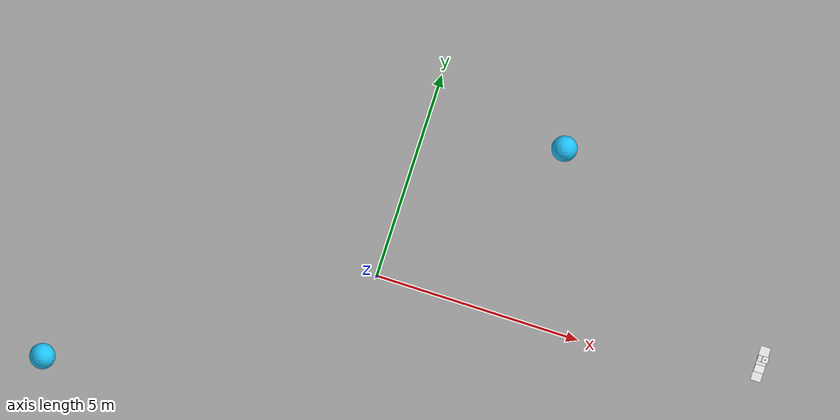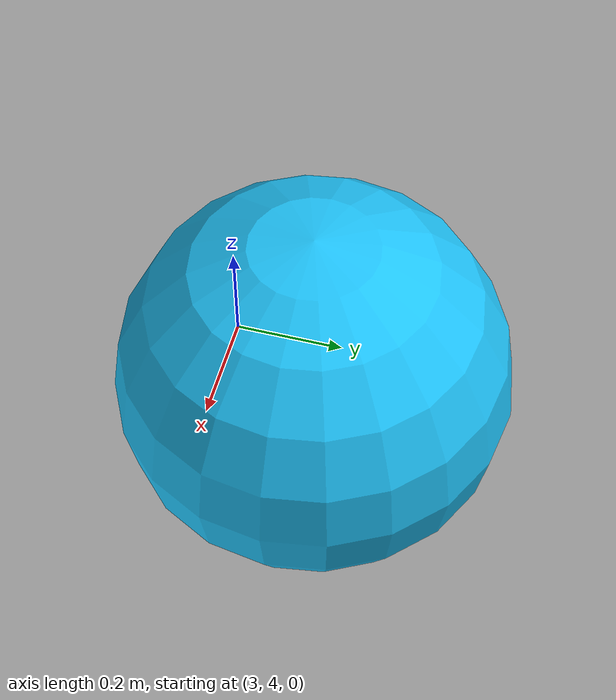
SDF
<sdf version="1.6">
 <world name="default">
  <gravity>0 0 -9.8</gravity>
  <magnetic_field>6e-06 2.3e-05 -4.2e-05</magnetic_field>
  <atmosphere type="adiabatic"/>
  <physics name="default_physics" default="0" type="ode">
   <max_step_size>0.001</max_step_size>
   <real_time_factor>1</real_time_factor>
   <real_time_update_rate>1000</real_time_update_rate>
  </physics>
  <scene>
   <ambient>0.4 0.4 0.4 1</ambient>
   <background>0.7 0.7 0.7 1</background>
   <shadows>false</shadows>
   <grid>false</grid>
   <origin_visual>false</origin_visual>
  </scene>
  <spherical_coordinates>
   <surface_model>EARTH_WGS84</surface_model>
   <latitude_deg>0</latitude_deg>
   <longitude_deg>0</longitude_deg>
   <elevation>0</elevation>
   <heading_deg>0</heading_deg>
  </spherical_coordinates>
  <model name="Ball_01_001">
   <static>true</static>
   <include><uri>model://aws_robomaker_residential_Ball_01</uri></include>
   <pose>3.295503 4.225674 0.318684 0 -0 0</pose>
  </model>
  <model name="Ball_01_003">
   <static>true</static>
   <include><uri>model://aws_robomaker_residential_Ball_01</uri></include>
   <pose>-6.945503 -4.22174 0.318684 0 -0 0</pose>
  </model>
  <model name="RobotStation_01_001">
   <static>true</static>
   <link name="link">
    <inertial>
     <mass>1.0</mass>
     <inertia>
      <ixx>0.166667</ixx>
      <ixy>0</ixy>
      <ixz>0</ixz>
      <iyy>0.166667</iyy>
      <iyz>0</iyz>
      <izz>0.166667</izz>
     </inertia>
    </inertial>
    <collision name="collision"><geometry><box><size>0.85 0.25 0.65</size></box></geometry></collision>
    <visual name="base">
     <geometry><box><size>0.85 0.25 0.03</size></box></geometry>
     <material>
      <script><uri>file://media/materials/scripts/gazebo.material</uri><name>Gazebo/White</name></script>
     </material>
    </visual>
    <visual name="ramp">
     <pose>-0.12 0 0.04 0.2 0 0</pose>
     <geometry><box><size>0.18 0.25 0.015</size></box></geometry>
     <material>
      <script><uri>file://media/materials/scripts/gazebo.material</uri><name>Gazebo/White</name></script>
     </material>
    </visual>
    <visual name="main_body">
     <pose>0.12 0 0.09 0 0 0</pose>
     <geometry><box><size>0.15 0.25 0.15</size></box></geometry>
     <material>
      <script><uri>file://media/materials/scripts/gazebo.material</uri><name>Gazebo/White</name></script>
     </material>
    </visual>
    <visual name="pillar">
     <pose>0.12 0 0.35 0 0 0</pose>
     <geometry><box><size>0.05 0.05 0.5</size></box></geometry>
     <material>
      <script><uri>file://media/materials/scripts/gazebo.material</uri><name>Gazebo/Grey</name></script>
     </material>
    </visual>
    <visual name="top_box">
     <pose>0.12 0 0.6 0 0 0</pose>
     <geometry><box><size>0.15 0.15 0.1</size></box></geometry>
     <material>
      <script><uri>file://media/materials/scripts/gazebo.material</uri><name>Gazebo/White</name></script>
     </material>
    </visual>
    <visual name="contact_left">
     <pose>-0.08 0.05 0.025 0 0 0</pose>
     <geometry><cylinder><radius>0.008</radius><length>0.015</length></cylinder></geometry>
     <material>
      <script><uri>file://media/materials/scripts/gazebo.material</uri><name>Gazebo/Gold</name></script>
     </material>
    </visual>
    <visual name="contact_right">
     <pose>-0.08 -0.05 0.025 0 0 0</pose>
     <geometry><cylinder><radius>0.008</radius><length>0.015</length></cylinder></geometry>
     <material>
      <script><uri>file://media/materials/scripts/gazebo.material</uri><name>Gazebo/Gold</name></script>
     </material>
    </visual>
    <visual name="status_light">
     <pose>0.12 0 0.65 0 0 0</pose>
     <geometry><sphere><radius>0.015</radius></sphere></geometry>
     <material>
      <script><uri>file://media/materials/scripts/gazebo.material</uri><name>Gazebo/Green</name></script>
      <emissive>0 0.5 0 1</emissive>
     </material>
    </visual>
    <visual name="logo">
     <pose>0.12 0 0.12 0 0 0</pose>
     <geometry><cylinder><radius>0.03</radius><length>0.001</length></cylinder></geometry>
     <material>
      <script><uri>file://media/materials/scripts/gazebo.material</uri><name>Gazebo/Blue</name></script>
     </material>
    </visual>
   </link>
   <pose>9.3 0.8 0.015 0 0 1.57</pose>
  </model>
  <light name="LivingRoom_CeilingLight_0" type="point">
   <pose>1.194296 4.155759 2.2 0 -0 0</pose>
   <diffuse>0.5 0.5 0.5 1</diffuse>
   <specular>0.1 0.1 0.1 1</specular>
   <attenuation>
    <range>20</range>
    <constant>0.32</constant>
    <linear>0.01</linear>
    <quadratic>0.03</quadratic>
   </attenuation>
   <cast_shadows>0</cast_shadows>
   <direction>0 0 -1</direction>
  </light>
  <light name="LivingRoom_CeilingLight_1" type="point">
   <pose>1.194296 -1.589959 2.2 0 -0 0</pose>
   <diffuse>0.5 0.5 0.5 1</diffuse>
   <specular>0.1 0.1 0.1 1</specular>
   <attenuation>
    <range>20</range>
    <constant>0.05</constant>
    <linear>0.01</linear>
    <quadratic>0.09</quadratic>
   </attenuation>
   <cast_shadows>0</cast_shadows>
   <direction>0 0 -1</direction>
  </light>
  <light name="LivingRoom_WallLight_0" type="point">
   <pose>1.76956 -5.444370 2.2 0 -0 0</pose>
   <diffuse>0.24 0.24 0.24 1</diffuse>
   <specular>0.1 0.1 0.1 1</specular>
   <attenuation>
    <range>20</range>
    <constant>0.12</constant>
    <linear>0.00</linear>
    <quadratic>0.03</quadratic>
   </attenuation>
   <direction>0 0 -1</direction>
  </light>
  <light name="LivingRoom_WallLight_1" type="point">
   <pose>-0.13826 -5.444370 2.2 0 -0 0</pose>
   <diffuse>0.24 0.24 0.24 1</diffuse>
   <specular>0.1 0.1 0.1 1</specular>
   <attenuation>
    <range>20</range>
    <constant>0.12</constant>
    <linear>0.00</linear>
    <quadratic>0.03</quadratic>
   </attenuation>
   <direction>0 0 -1</direction>
  </light>
  <light name="TV_Light_0" type="point">
   <pose>0.8269 -4.939577 1.1 0 -0 0</pose>
   <diffuse>0.31372 0.31372 0.34901 1</diffuse>
   <specular>0.1 0.1 0.1 1</specular>
   <attenuation>
    <range>3</range>
    <constant>0.10</constant>
    <linear>0.04</linear>
    <quadratic>0.50</quadratic>
   </attenuation>
   <direction>0 0 -1</direction>
  </light>
  <light name="BedRoom_Portrait_Light_0" type="spot">
   <pose>-6.190379 -1.829697 1.5587 0.3 -0 0.0</pose>
   <diffuse>0.5 0.5 0.5 1</diffuse>
   <specular>0.1 0.1 0.1 1</specular>
   <attenuation>
    <range>20</range>
    <constant>0.50</constant>
    <linear>0.01</linear>
    <quadratic>0.00</quadratic>
   </attenuation>
   <spot><inner_angle>0.6</inner_angle><outer_angle>1.0</outer_angle><falloff>1.0</falloff></spot>
   <direction>0 0 -1</direction>
  </light>
  <light name="BedRoom_CeilingLight_0" type="point">
   <pose>-6.451061 -0.692040 2.000000 0 -0 0</pose>
   <diffuse>0.5 0.5 0.5 1</diffuse>
   <specular>0.1 0.1 0.1 1</specular>
   <attenuation>
    <range>20</range>
    <constant>0.32</constant>
    <linear>0.01</linear>
    <quadratic>0.03</quadratic>
   </attenuation>
   <cast_shadows>0</cast_shadows>
   <direction>0 0 -1</direction>
  </light>
  <light name="Kitchen_CeilingLight_0" type="point">
   <pose>7.8582 -1.5905 2.280000 0 -0 0</pose>
   <diffuse>0.5 0.5 0.5 1</diffuse>
   <specular>0.1 0.1 0.1 1</specular>
   <attenuation>
    <range>20</range>
    <constant>0.3</constant>
    <linear>0.01</linear>
    <quadratic>0.01</quadratic>
   </attenuation>
   <cast_shadows>0</cast_shadows>
   <direction>0 0 -1</direction>
  </light>
 </world>
</sdf>

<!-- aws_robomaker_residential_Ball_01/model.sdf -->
<sdf version="1.6">
  <model name="aws_robomaker_residential_Ball_01">
    <link name="link">
      <inertial>
        <mass>0.12</mass>

          <inertia>
            <ixx>0.030752</ixx>
            <ixy>0</ixy>
            <ixz>0</ixz>
            <iyy>0.030752</iyy>
            <iyz>0</iyz>
            <izz>0.030752</izz>
          </inertia>
      </inertial>
      <collision name="collision">

        <geometry>

          <sphere>
            <radius>0.31 </radius>
          </sphere>

        </geometry>

        <surface>
          <friction>
            <ode>
              <mu>0.85</mu>
              <mu2>0.85</mu2>
            </ode>
          </friction>

          <contact>
            <ode>
              <kd>8500</kd>
              <max_vel>5.1</max_vel>
            </ode>
          </contact>
        </surface>

      </collision>
      <visual name="visual">
	    <geometry>

          <sphere>
            <radius>0.31 </radius>
          </sphere>
      </geometry>
          <material>
            <diffuse>0.12 0.76 0.97 1</diffuse>
            <ambient>0.03 0.21 0.27 1</ambient>
          </material>

      <meta> <layer> 1 </layer></meta>
</visual>
    </link>
  </model>
</sdf>
